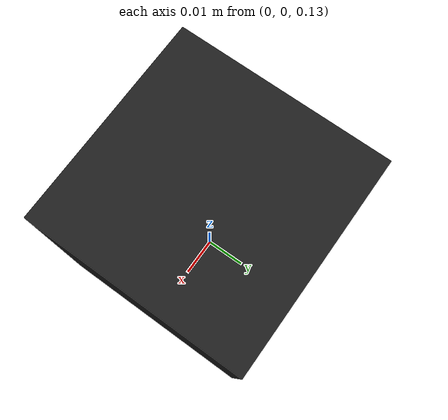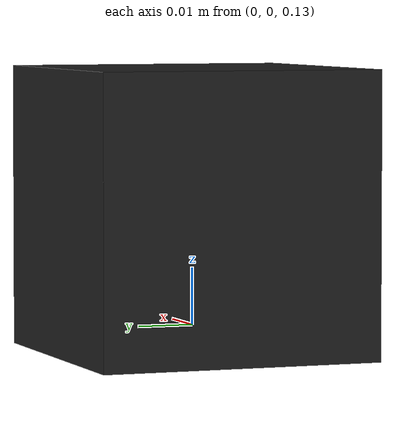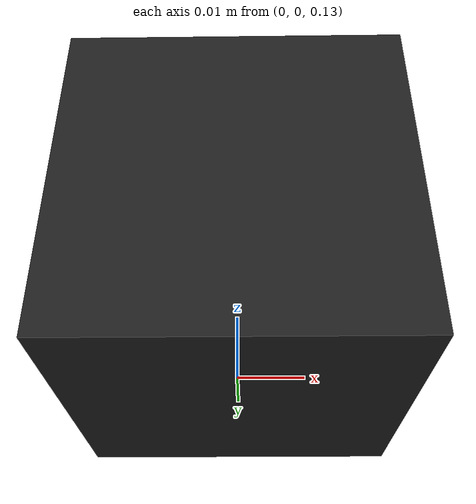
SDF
<?xml version='1.0'?>
<sdf version='1.5'>
  <model name='iris_lidar'>
  <pose>0 0 0.075077 0 0 0</pose>

    <link name="base_scan">
      <pose>0 0 0.075077 0 0 0</pose>
      <inertial>
        <mass>0.1</mass>
        <inertia>
          <ixx>0.000166667</ixx>
          <iyy>0.000166667</iyy>
          <izz>0.000166667</izz>
        </inertia>
      </inertial>

      <collision name="collision">
        <geometry>
          <box>
            <size>0.05 0.05 0.05</size>
          </box>
        </geometry>
      </collision>

      <visual name="visual">
        <geometry>
          <box>
            <size>0.05 0.05 0.05</size>
          </box>
        </geometry>
        <material>
            <script>
              <uri>file://media/materials/scripts/gazebo.material</uri>
              <name>Gazebo/Black</name>
            </script>
          </material>
      </visual>

      <sensor name="hls_lfcd_lds" type="ray">
        <always_on>true</always_on>
        <visualize>true</visualize>
        <pose>0 0 0 0 0 0</pose>
        <update_rate>5</update_rate>
        <ray>
          <scan>
            <horizontal>
              <samples>360</samples>
              <resolution>1.000000</resolution>
              <min_angle>0.000000</min_angle>
              <max_angle>6.280000</max_angle>
            </horizontal>
          </scan>
          <range>
            <min>0.120000</min>
            <max>3.5</max>
            <resolution>0.015000</resolution>
          </range>
          <noise>
            <type>gaussian</type>
            <mean>0.0</mean>
            <stddev>0.01</stddev>
          </noise>
        </ray>
        <plugin name="iris_laserscan" filename="libgazebo_ros_ray_sensor.so">
          <ros>
            <remapping>~/out:=scan</remapping>
          </ros>
          <output_type>sensor_msgs/LaserScan</output_type>
          <frame_name>odom</frame_name>
        </plugin>
      </sensor>
    </link>

  </model>
</sdf>
